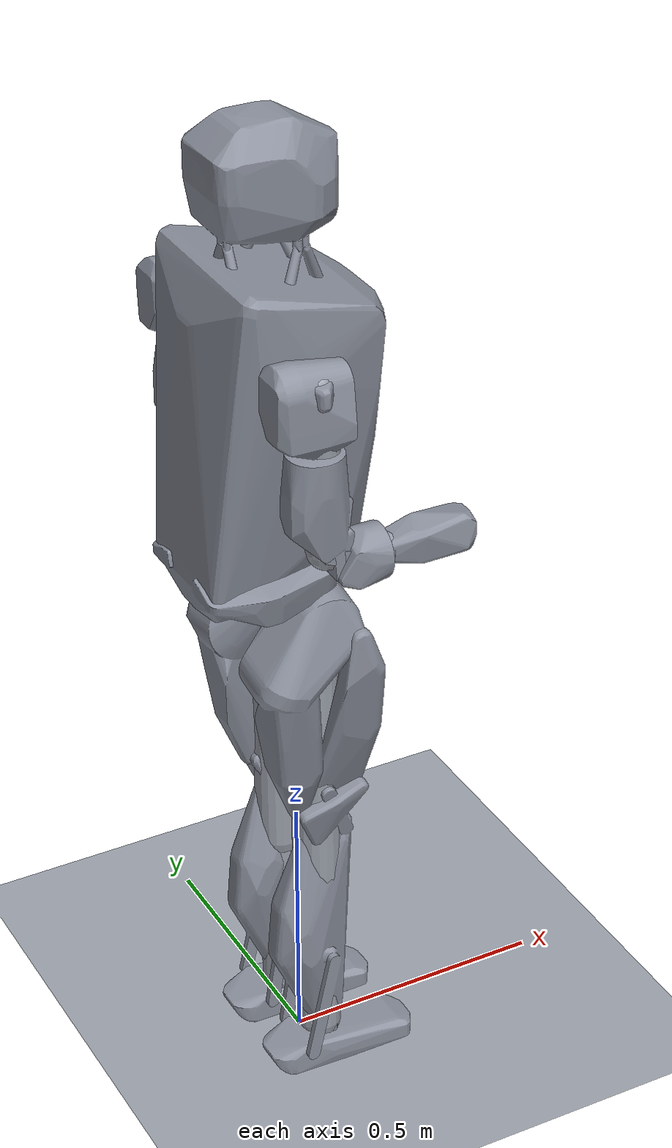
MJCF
<mujoco model="dropbear_serial_scene">
  <include file="dropbear_serial.xml"/>
  <visual><headlight diffuse="0.6 0.6 0.6" ambient="0.3 0.3 0.3" specular="0 0 0"/></visual>
  <asset>
    <texture name="grid" type="2d" builtin="checker" rgb1="0.2 0.3 0.4" rgb2="0.1 0.2 0.3" width="512" height="512"/>
    <material name="grid" texture="grid" texrepeat="1 1" texuniform="true" reflectance="0.1"/>
  </asset>
  <worldbody>
    <light pos="0 0 3.5" dir="0 0 -1" directional="true"/>
    <geom name="floor" type="plane" size="0 0 0.05" material="grid" contype="0" conaffinity="1" group="0"/>
  </worldbody>
</mujoco>

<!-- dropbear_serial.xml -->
<mujoco model="dropbear_serial">
  <compiler angle="radian" inertiafromgeom="false" autolimits="true" meshdir="meshes"/>
  <option timestep="0.005" integrator="implicitfast"/>
  <default>
    <joint damping="0.5" frictionloss="0"/>
    <geom contype="0" conaffinity="0" group="2" rgba="0.62 0.64 0.68 1"/>
    <site size="0.012" group="4" rgba="0.9 0.2 0.2 1"/>
    <default class="collision">
      <geom contype="1" conaffinity="0" group="3" condim="3" friction="1.0 0.005 0.0001" rgba="0.2 0.5 0.8 0.5"/>
    </default>
    <default class="visual">
      <geom contype="0" conaffinity="0" group="2"/>
    </default>
  </default>
  <asset>
    <mesh name="mesh_pelvis" file="mesh_pelvis.stl"/>
    <mesh name="mesh_left_hip_yaw_link" file="mesh_left_hip_yaw_link.stl"/>
    <mesh name="mesh_left_knee_link" file="mesh_left_knee_link.stl"/>
    <mesh name="mesh_left_ankle_pitch_link" file="mesh_left_ankle_pitch_link.stl"/>
    <mesh name="mesh_left_ankle_roll_link" file="mesh_left_ankle_roll_link.stl"/>
    <mesh name="mesh_right_hip_yaw_link" file="mesh_right_hip_yaw_link.stl"/>
    <mesh name="mesh_right_knee_link" file="mesh_right_knee_link.stl"/>
    <mesh name="mesh_right_ankle_pitch_link" file="mesh_right_ankle_pitch_link.stl"/>
    <mesh name="mesh_right_ankle_roll_link" file="mesh_right_ankle_roll_link.stl"/>
    <mesh name="mesh_left_shoulder_pitch_link" file="mesh_left_shoulder_pitch_link.stl"/>
    <mesh name="mesh_left_shoulder_roll_link" file="mesh_left_shoulder_roll_link.stl"/>
    <mesh name="mesh_left_shoulder_yaw_link" file="mesh_left_shoulder_yaw_link.stl"/>
    <mesh name="mesh_left_elbow_link" file="mesh_left_elbow_link.stl"/>
    <mesh name="mesh_left_wrist_roll_link" file="mesh_left_wrist_roll_link.stl"/>
    <mesh name="mesh_right_shoulder_pitch_link" file="mesh_right_shoulder_pitch_link.stl"/>
    <mesh name="mesh_right_shoulder_roll_link" file="mesh_right_shoulder_roll_link.stl"/>
    <mesh name="mesh_right_shoulder_yaw_link" file="mesh_right_shoulder_yaw_link.stl"/>
    <mesh name="mesh_right_elbow_link" file="mesh_right_elbow_link.stl"/>
    <mesh name="mesh_right_wrist_roll_link" file="mesh_right_wrist_roll_link.stl"/>
  </asset>
  <worldbody>
    <body name="pelvis" pos="0 0 0.98568714">
      <freejoint name="floating_base_joint"/>
      <inertial pos="-0.05276259 0.00117719 0.32691659" mass="25.614368" fullinertia="1.28768434 1.263139055 0.325192407 -0.000254852 -0.070223642 -0.000599618"/>
      <geom name="torso" class="collision" type="box" pos="-0.03122862 0.00000201 0.33522061" size="0.1734605 0.1745 0.310906"/>
      <geom name="mesh_pelvis" class="visual" type="mesh" mesh="mesh_pelvis" group="1" rgba="0.55 0.57 0.62 1"/>
      <site name="usd_world" pos="-0.04135712 0.06972201 -1.11235639" quat="1 0 0 0"/>
      <body name="left_hip_pitch_link" pos="-0.00040929 0.07591014 0.00607059">
        <inertial pos="0 0 0" mass="0.010000" fullinertia="0.00001 0.00001 0.00001 0 0 0"/>
        <joint name="left_hip_pitch" axis="0 1 0" range="-1.026430828 0.584710742" armature="0.01001" actuatorfrcrange="-235.31 235.31"/>
        <body name="left_hip_roll_link" pos="0.00040934 -0.01429345 0.06972254">
          <inertial pos="0 0 0" mass="0.010000" fullinertia="0.00001 0.00001 0.00001 0 0 0"/>
          <joint name="left_hip_roll" axis="1 0 0" range="-0.497732548 0.793191191" armature="0.00998" actuatorfrcrange="-223.76 223.76"/>
          <body name="left_hip_yaw_link" pos="-0.00065675 -0.00663526 -0.07579357">
            <inertial pos="-0.02605913 0.04554609 -0.09173485" mass="5.768055" fullinertia="0.062462836 0.074072299 0.023644899 0.00014812 -0.001910969 0.00100805"/>
            <joint name="left_hip_yaw" axis="0 0 1" range="-0.665783781 0.660981186" armature="0.01001" actuatorfrcrange="-254.02 254.02"/>
            <geom name="left_hip_yaw_vis" class="visual" type="capsule" size="0.045" fromto="0.00065675 0.02092872 0 0.00422368 0.02043955 -0.58037997"/>
            <geom name="mesh_left_hip_yaw_link" class="visual" type="mesh" mesh="mesh_left_hip_yaw_link" group="1" rgba="0.55 0.57 0.62 1"/>
            <site name="usd_LL_RMD_X10_S2_MIR4__3_Stator_1" pos="0.00065675 0.02092872 0" quat="0.7652583177 0.6435566342 0.0145207276 -0.0019272306"/>
            <body name="left_knee_link" pos="0.08274892 0.00090455 -0.57988091" quat="0.996250507971 -0.08594608307 0 0.009909398183">
              <inertial pos="-0.08756693 0.0402031 -0.05707866" mass="3.497937" fullinertia="0.083033605 0.084118731 0.007456186 0.000003451 -0.005914893 0.003904969"/>
              <joint name="left_knee" axis="0 1 0" range="-0.084924409 0.823478274" armature="0.00312" actuatorfrcrange="-167.45 167.45"/>
              <geom name="left_knee_vis" class="visual" type="capsule" size="0.040" fromto="-0.07812327 0.02087846 0.00298738 -0.07549838 0.07795782 -0.32728994"/>
              <geom name="mesh_left_knee_link" class="visual" type="mesh" mesh="mesh_left_knee_link" group="1" rgba="0.55 0.57 0.62 1"/>
              <site name="usd_LL_double_bracket_10deg_MIR_MIR_MIR_1" pos="-0.03534663 0.02204177 0.1187572" quat="0.7059541348 0.7059542059 0.040356911 -0.0403576315"/>
              <body name="left_ankle_pitch_link" pos="-0.07550804 0.07794833 -0.32723421" quat="0.996250507971 0.08594608307 0 -0.009909398183">
                <inertial pos="-0.00002372 0.00985977 -0.02139279" mass="0.104245" fullinertia="0.000072119 0.000059559 0.000039322 -0.000000175 0.000000071 -0.000008953"/>
                <joint name="left_ankle_pitch" axis="0 1 0" range="-0.707061449 0.767635872" armature="0.02559" actuatorfrcrange="-178.63 178.63"/>
                <geom name="mesh_left_ankle_pitch_link" class="visual" type="mesh" mesh="mesh_left_ankle_pitch_link" group="1" rgba="0.55 0.57 0.62 1"/>
                <body name="left_ankle_roll_link" pos="0.00000956 0.00990797 -0.04025261">
                  <inertial pos="0.02930599 0.00044839 -0.00756169" mass="0.935217" fullinertia="0.007999991 0.012203137 0.008299293 -0.00032221 -0.000052586 -0.002320467"/>
                  <joint name="left_ankle_roll" axis="1 0 0" range="-0.783363706 0.570920306" armature="0.04448" actuatorfrcrange="-235.27 235.27"/>
                  <geom name="left_foot_sole" class="collision" type="box" pos="0.03825454 0.00034643 -0.01989621" size="0.13250173 0.05048594 0.01"/>
                  <geom name="mesh_left_ankle_roll_link" class="visual" type="mesh" mesh="mesh_left_ankle_roll_link" group="1" rgba="0.55 0.57 0.62 1"/>
                  <site name="usd_LL_skateboard_bearing_left_2" pos="0.01999299 0.00023586 0.00023139" quat="0.7654909043 0.6427915366 0.0222310534 -0.018668053"/>
                  <site name="left_sole" pos="0.03825454 0.00034643 -0.02989621" quat="1 0 0 0"/>
                </body>
              </body>
            </body>
          </body>
        </body>
      </body>
      <body name="right_hip_pitch_link" pos="-0.00031341 -0.07591014 0.00591324">
        <inertial pos="0 0 0" mass="0.010000" fullinertia="0.00001 0.00001 0.00001 0 0 0"/>
        <joint name="right_hip_pitch" axis="0 1 0" range="-1.024753911 0.584734182" armature="0.01001" actuatorfrcrange="-235.66 235.66"/>
        <body name="right_hip_roll_link" pos="0.00031337 0.01417398 0.06918984">
          <inertial pos="0 0 0" mass="0.010000" fullinertia="0.00001 0.00001 0.00001 0 0 0"/>
          <joint name="right_hip_roll" axis="1 0 0" range="-0.790069303 0.494695399" armature="0.01000" actuatorfrcrange="-224.35 224.35"/>
          <body name="right_hip_yaw_link" pos="0.00053521 0.00701623 -0.07510265">
            <inertial pos="-0.02718943 -0.04571627 -0.09154041" mass="5.776350" fullinertia="0.062687711 0.074531727 0.023406176 -0.000110081 -0.001912859 -0.001710632"/>
            <joint name="right_hip_yaw" axis="0 0 1" range="-0.664176495 0.664058959" armature="0.00999" actuatorfrcrange="-252.34 252.34"/>
            <geom name="right_hip_yaw_vis" class="visual" type="capsule" size="0.045" fromto="-0.00053521 -0.02119021 0 0.00309152 -0.02070094 -0.57776456"/>
            <geom name="mesh_right_hip_yaw_link" class="visual" type="mesh" mesh="mesh_right_hip_yaw_link" group="1" rgba="0.55 0.57 0.62 1"/>
            <site name="usd_RL_RMD_X10_S2_MIR4__3_Stator_1" pos="-0.00053521 -0.02119021 0" quat="0.6435574901 0.7652608871 0.0016889947 -0.0143763311"/>
            <body name="right_knee_link" pos="0.08180791 -0.00163093 -0.57725429" quat="0.996249792354 0.085949502474 0 -0.009951595772">
              <inertial pos="-0.0875803 -0.04020399 -0.05975266" mass="3.497937" fullinertia="0.083019384 0.084114273 0.007465708 -0.000689239 -0.005962921 -0.009354553"/>
              <joint name="right_knee" axis="0 1 0" range="-0.085897619 0.838013749" armature="0.00304" actuatorfrcrange="-165.34 165.34"/>
              <geom name="right_knee_vis" class="visual" type="capsule" size="0.040" fromto="-0.07832179 -0.0204327 0.00289775 -0.07562961 -0.07795807 -0.32996094"/>
              <geom name="mesh_right_knee_link" class="visual" type="mesh" mesh="mesh_right_knee_link" group="1" rgba="0.55 0.57 0.62 1"/>
              <site name="usd_RL_double_bracket_10deg_MIR_MIR_MIR_1" pos="-0.03525597 -0.02204208 0.11606618" quat="0.7059441149 0.7059441148 0.0405325008 -0.0405330692"/>
              <body name="right_ankle_pitch_link" pos="-0.07562846 -0.07794774 -0.32990166" quat="0.996249792354 -0.085949502474 0 0.009951595772">
                <inertial pos="-0.00003104 -0.00986025 -0.02139654" mass="0.104245" fullinertia="0.000072107 0.000062955 0.000035938 -0.000000371 -0.00000012 -0.000000437"/>
                <joint name="right_ankle_pitch" axis="0 1 0" range="-0.771028324 0.744878518" armature="0.02573" actuatorfrcrange="-178.79 178.79"/>
                <geom name="mesh_right_ankle_pitch_link" class="visual" type="mesh" mesh="mesh_right_ankle_pitch_link" group="1" rgba="0.55 0.57 0.62 1"/>
                <body name="right_ankle_roll_link" pos="-0.00000125 -0.00987667 -0.04028791">
                  <inertial pos="0.02931384 -0.00048246 -0.00752314" mass="0.935217" fullinertia="0.007989099 0.013178816 0.007334506 -0.000211066 -0.000174729 -0.000349537"/>
                  <joint name="right_ankle_roll" axis="1 0 0" range="-0.528420333 0.838770967" armature="0.04461" actuatorfrcrange="-235.64 235.64"/>
                  <geom name="right_foot_sole" class="collision" type="box" pos="0.03824099 -0.0003891 -0.01989838" size="0.13247612 0.05048356 0.01"/>
                  <geom name="mesh_right_ankle_roll_link" class="visual" type="mesh" mesh="mesh_right_ankle_roll_link" group="1" rgba="0.55 0.57 0.62 1"/>
                  <site name="usd_RL_skateboard_bearing_left_2" pos="0.01999941 -0.00026647 0.00026814" quat="0.6429757039 0.7653396769 0.0186140338 -0.0221571859"/>
                  <site name="right_sole" pos="0.03824099 -0.0003891 -0.02989838" quat="1 0 0 0"/>
                </body>
              </body>
            </body>
          </body>
        </body>
      </body>
      <body name="left_shoulder_pitch_link" pos="-0.07628731 0.17450197 0.50910023">
        <inertial pos="0.00141069 0.02653182 0.00000006" mass="0.343923" fullinertia="0.000426784 0.00011962 0.000443404 -0.000011385 0 0.000000001"/>
        <joint name="left_shoulder_pitch" axis="0 1 0" range="-3.142279168 3.142544329" armature="0.01000" actuatorfrcrange="-40.00 40.00"/>
        <geom name="mesh_left_shoulder_pitch_link" class="visual" type="mesh" mesh="mesh_left_shoulder_pitch_link" group="1" rgba="0.55 0.57 0.62 1"/>
        <body name="left_shoulder_roll_link" pos="-0.00000004 0.05000049 0.00000014">
          <inertial pos="-0.0291094 0.00435951 -0.01811314" mass="1.200415" fullinertia="0.002522438 0.003543962 0.002478347 -0.000125576 0.000502998 0.000234063"/>
          <joint name="left_shoulder_roll" axis="1 0 0" range="-0.174579373 3.141632264" armature="0.01000" actuatorfrcrange="-40.00 40.00"/>
          <geom name="mesh_left_shoulder_roll_link" class="visual" type="mesh" mesh="mesh_left_shoulder_roll_link" group="1" rgba="0.55 0.57 0.62 1"/>
          <body name="left_shoulder_yaw_link" pos="0.00000109 0.01399955 -0.00000014">
            <inertial pos="0.00151562 0.00606547 -0.17773896" mass="1.837935" fullinertia="0.013360456 0.014018546 0.003832121 0.000387625 0.001273172 -0.001671003"/>
            <joint name="left_shoulder_yaw" axis="0 0 1" range="-3.142285232 3.142545149" armature="0.01000" actuatorfrcrange="-40.00 40.00"/>
            <geom name="left_shoulder_yaw_vis" class="visual" type="capsule" size="0.035" fromto="0 0 0 0.02324603 -0.00899997 -0.29754745"/>
            <geom name="mesh_left_shoulder_yaw_link" class="visual" type="mesh" mesh="mesh_left_shoulder_yaw_link" group="1" rgba="0.55 0.57 0.62 1"/>
            <site name="usd_LH_RMD_X8_Pro_MIR8_MIR1__3__1" pos="-0.00000109 0 -0.10699987" quat="0.7071067216 0.7071068408 -0.0000000214 0.0000000596"/>
            <body name="left_elbow_link" pos="0.02324603 -0.00899997 -0.29754745" quat="1 0.000000033472 0 0.000000107486">
              <inertial pos="0.0709169 0.00987912 -0.02090957" mass="0.915660" fullinertia="0.001535587 0.004601152 0.00492998 0.001055547 -0.000120596 0.000038791"/>
              <joint name="left_elbow" axis="0 1 0" range="-0.572478782 1.544453089" armature="0.00043" actuatorfrcrange="-8.30 8.30"/>
              <geom name="left_elbow_vis" class="visual" type="capsule" size="0.030" fromto="0 0 0 0.09932683 0.00899947 -0.02116337"/>
              <geom name="mesh_left_elbow_link" class="visual" type="mesh" mesh="mesh_left_elbow_link" group="1" rgba="0.55 0.57 0.62 1"/>
              <site name="usd_LH_6mm_bearing__4__1" pos="0.01385949 0.03649947 -0.04032186" quat="0.5000043121 0.5000044709 -0.4999956285 0.4999955884"/>
              <body name="left_wrist_roll_link" pos="0.09932683 0.00899961 -0.02116356" quat="0.999999999961 -0.000000033471 0.000008854816 -0.000000002424">
                <inertial pos="0.09482238 -0.00000013 -0.00003659" mass="0.652580" fullinertia="0.000350034 0.001254792 0.0012628 0.000000026 0.000000316 -0"/>
                <joint name="left_wrist_roll" axis="1 0 0" range="-3.141592654 3.141592654" armature="0.01000" actuatorfrcrange="-40.00 40.00"/>
                <geom name="left_hand" class="collision" type="box" pos="0.0839908 -0.00000012 -0.00003981" quat="0.999999999961 0 -0.000008854816 -0.000000105061" size="0.08349826 0.03650001 0.03651519"/>
                <geom name="mesh_left_wrist_roll_link" class="visual" type="mesh" mesh="mesh_left_wrist_roll_link" group="1" rgba="0.55 0.57 0.62 1"/>
                <site name="usd_LH_shoulder_ex_al_interface_1" pos="-0.00000012 -0.00000012 0.00000006" quat="0.4999999152 0.5000000193 -0.5000001073 0.4999999582"/>
              </body>
            </body>
          </body>
        </body>
      </body>
      <body name="right_shoulder_pitch_link" pos="-0.07628619 -0.17449804 0.50910016">
        <inertial pos="0.00140957 -0.02653214 0.00000026" mass="0.343923" fullinertia="0.000426777 0.00011962 0.000443397 0.000011385 0 -0.000000001"/>
        <joint name="right_shoulder_pitch" axis="0 1 0" range="-3.14257849 3.142314566" armature="0.01000" actuatorfrcrange="-40.00 40.00"/>
        <geom name="mesh_right_shoulder_pitch_link" class="visual" type="mesh" mesh="mesh_right_shoulder_pitch_link" group="1" rgba="0.55 0.57 0.62 1"/>
        <body name="right_shoulder_roll_link" pos="-0.00000116 -0.05000024 0.00000005">
          <inertial pos="-0.0291094 -0.00435976 -0.01811298" mass="1.200415" fullinertia="0.002522439 0.003543962 0.002478347 0.000121408 0.000502998 -0.000248063"/>
          <joint name="right_shoulder_roll" axis="1 0 0" range="-3.141644782 0.17458373" armature="0.01000" actuatorfrcrange="-40.00 40.00"/>
          <geom name="mesh_right_shoulder_roll_link" class="visual" type="mesh" mesh="mesh_right_shoulder_roll_link" group="1" rgba="0.55 0.57 0.62 1"/>
          <body name="right_shoulder_yaw_link" pos="0.00000118 -0.01400002 0.00000014">
            <inertial pos="0.00150219 -0.00606527 -0.17776347" mass="1.837935" fullinertia="0.013406779 0.014024188 0.003791443 0.000366114 0.001269261 -0.002482858"/>
            <joint name="right_shoulder_yaw" axis="0 0 1" range="-3.142154812 3.142366632" armature="0.01000" actuatorfrcrange="-40.00 40.00"/>
            <geom name="right_shoulder_yaw_vis" class="visual" type="capsule" size="0.035" fromto="0 0 0 0.02339266 0.0090002 -0.29860348"/>
            <geom name="mesh_right_shoulder_yaw_link" class="visual" type="mesh" mesh="mesh_right_shoulder_yaw_link" group="1" rgba="0.55 0.57 0.62 1"/>
            <site name="usd_RH_RMD_X8_Pro_MIR8_MIR1__3__1" pos="-0.00000118 0.00000025 -0.10699999" quat="0.7071068408 0.7071067216 0.0000000679 -0.0000001788"/>
            <body name="right_elbow_link" pos="0.02339266 0.0090002 -0.29860348" quat="1 -0.000000186274 0 0.000000058304">
              <inertial pos="0.06937028 -0.00987964 -0.0206965" mass="0.915660" fullinertia="0.001535918 0.004596874 0.004925373 0.000947974 -0.000120747 0.000037273"/>
              <joint name="right_elbow" axis="0 1 0" range="-0.634044318 1.542601821" armature="0.00039" actuatorfrcrange="-7.89 7.89"/>
              <geom name="right_elbow_vis" class="visual" type="capsule" size="0.030" fromto="0 0 0 0.09774158 -0.00899998 -0.02095949"/>
              <geom name="mesh_right_elbow_link" class="visual" type="mesh" mesh="mesh_right_elbow_link" group="1" rgba="0.55 0.57 0.62 1"/>
              <site name="usd_RH_6mm_bearing__4__1" pos="0.01227491 -0.03649999 -0.04012093" quat="0.4999956868 0.4999959355 -0.5000042282 0.5000041494"/>
              <body name="right_wrist_roll_link" pos="0.09774158 -0.00900003 -0.02095964" quat="0.999999999965 0.000000186273 -0.000008308921 0.000000005783">
                <inertial pos="0.09482256 0.00000006 -0.00003671" mass="0.652580" fullinertia="0.000350034 0.001254792 0.0012628 -0.000000026 0.000000316 0"/>
                <joint name="right_wrist_roll" axis="1 0 0" range="-3.141592654 3.141592654" armature="0.01000" actuatorfrcrange="-40.00 40.00"/>
                <geom name="right_hand" class="collision" type="box" pos="0.08399113 0.00000006 -0.00003918" quat="0.999999999965 0 0.000008308921 -0.000000064089" size="0.08349777 0.0365 0.03651387"/>
                <geom name="mesh_right_wrist_roll_link" class="visual" type="mesh" mesh="mesh_right_wrist_roll_link" group="1" rgba="0.55 0.57 0.62 1"/>
                <site name="usd_RH_shoulder_ex_al_interface_1" pos="0.00000006 0.00000006 -0.00000006" quat="0.4999999779 0.4999999518 -0.5000000273 0.500000043"/>
              </body>
            </body>
          </body>
        </body>
      </body>
      <body name="torso_link" pos="0.05964271 0.02497491 0.52644435">
        <site name="usd_head_5mm_ujoint_base__5__1" pos="0 0.00000071 -0" quat="0.4999998435 0.5000000528 0.4999999329 0.5000001707"/>
      </body>
      <body name="head_link" pos="0.0024337 0.06021314 0.66516045">
        <site name="usd_head_u_joint_center__8__1" pos="-0.0000019 0.00000074 -0.00000036" quat="0.4999997616 0.4999994046 0.4999992847 0.500001549"/>
      </body>
    </body>
  </worldbody>
  <actuator>
    <general name="left_hip_pitch" joint="left_hip_pitch" ctrlrange="-1.026430828 0.584710742" forcerange="-235.31 235.31" gainprm="150.153" biastype="affine" biasprm="0 -150.153 -5.0051"/>
    <general name="left_hip_roll" joint="left_hip_roll" ctrlrange="-0.497732548 0.793191191" forcerange="-223.76 223.76" gainprm="149.738" biastype="affine" biasprm="0 -149.738 -4.9913"/>
    <general name="left_hip_yaw" joint="left_hip_yaw" ctrlrange="-0.665783781 0.660981186" forcerange="-254.02 254.02" gainprm="150.222" biastype="affine" biasprm="0 -150.222 -5.0074"/>
    <general name="left_knee" joint="left_knee" ctrlrange="-0.084924409 0.823478274" forcerange="-167.45 167.45" gainprm="62.307" biastype="affine" biasprm="0 -62.307 -3.7384"/>
    <general name="left_ankle_pitch" joint="left_ankle_pitch" ctrlrange="-0.707061449 0.767635872" forcerange="-178.63 178.63" gainprm="204.744" biastype="affine" biasprm="0 -204.744 -10.2372"/>
    <general name="left_ankle_roll" joint="left_ankle_roll" ctrlrange="-0.783363706 0.570920306" forcerange="-235.27 235.27" gainprm="355.875" biastype="affine" biasprm="0 -355.875 -17.7938"/>
    <general name="right_hip_pitch" joint="right_hip_pitch" ctrlrange="-1.024753911 0.584734182" forcerange="-235.66 235.66" gainprm="150.205" biastype="affine" biasprm="0 -150.205 -5.0068"/>
    <general name="right_hip_roll" joint="right_hip_roll" ctrlrange="-0.790069303 0.494695399" forcerange="-224.35 224.35" gainprm="150.035" biastype="affine" biasprm="0 -150.035 -5.0012"/>
    <general name="right_hip_yaw" joint="right_hip_yaw" ctrlrange="-0.664176495 0.664058959" forcerange="-252.34 252.34" gainprm="149.868" biastype="affine" biasprm="0 -149.868 -4.9956"/>
    <general name="right_knee" joint="right_knee" ctrlrange="-0.085897619 0.838013749" forcerange="-165.34 165.34" gainprm="60.752" biastype="affine" biasprm="0 -60.752 -3.6451"/>
    <general name="right_ankle_pitch" joint="right_ankle_pitch" ctrlrange="-0.771028324 0.744878518" forcerange="-178.79 178.79" gainprm="205.816" biastype="affine" biasprm="0 -205.816 -10.2908"/>
    <general name="right_ankle_roll" joint="right_ankle_roll" ctrlrange="-0.528420333 0.838770967" forcerange="-235.64 235.64" gainprm="356.876" biastype="affine" biasprm="0 -356.876 -17.8438"/>
    <general name="left_shoulder_pitch" joint="left_shoulder_pitch" ctrlrange="-3.142279168 3.142544329" forcerange="-40.00 40.00" gainprm="50.000" biastype="affine" biasprm="0 -50.000 -2.0000"/>
    <general name="left_shoulder_roll" joint="left_shoulder_roll" ctrlrange="-0.174579373 3.141632264" forcerange="-40.00 40.00" gainprm="50.000" biastype="affine" biasprm="0 -50.000 -2.0000"/>
    <general name="left_shoulder_yaw" joint="left_shoulder_yaw" ctrlrange="-3.142285232 3.142545149" forcerange="-40.00 40.00" gainprm="50.000" biastype="affine" biasprm="0 -50.000 -2.0000"/>
    <general name="left_elbow" joint="left_elbow" ctrlrange="-0.572478782 1.544453089" forcerange="-8.30 8.30" gainprm="2.155" biastype="affine" biasprm="0 -2.155 -0.0862"/>
    <general name="left_wrist_roll" joint="left_wrist_roll" ctrlrange="-3.141592654 3.141592654" forcerange="-40.00 40.00" gainprm="50.000" biastype="affine" biasprm="0 -50.000 -2.0000"/>
    <general name="right_shoulder_pitch" joint="right_shoulder_pitch" ctrlrange="-3.14257849 3.142314566" forcerange="-40.00 40.00" gainprm="50.000" biastype="affine" biasprm="0 -50.000 -2.0000"/>
    <general name="right_shoulder_roll" joint="right_shoulder_roll" ctrlrange="-3.141644782 0.17458373" forcerange="-40.00 40.00" gainprm="50.000" biastype="affine" biasprm="0 -50.000 -2.0000"/>
    <general name="right_shoulder_yaw" joint="right_shoulder_yaw" ctrlrange="-3.142154812 3.142366632" forcerange="-40.00 40.00" gainprm="50.000" biastype="affine" biasprm="0 -50.000 -2.0000"/>
    <general name="right_elbow" joint="right_elbow" ctrlrange="-0.634044318 1.542601821" forcerange="-7.89 7.89" gainprm="1.946" biastype="affine" biasprm="0 -1.946 -0.0779"/>
    <general name="right_wrist_roll" joint="right_wrist_roll" ctrlrange="-3.141592654 3.141592654" forcerange="-40.00 40.00" gainprm="50.000" biastype="affine" biasprm="0 -50.000 -2.0000"/>
  </actuator>
</mujoco>
